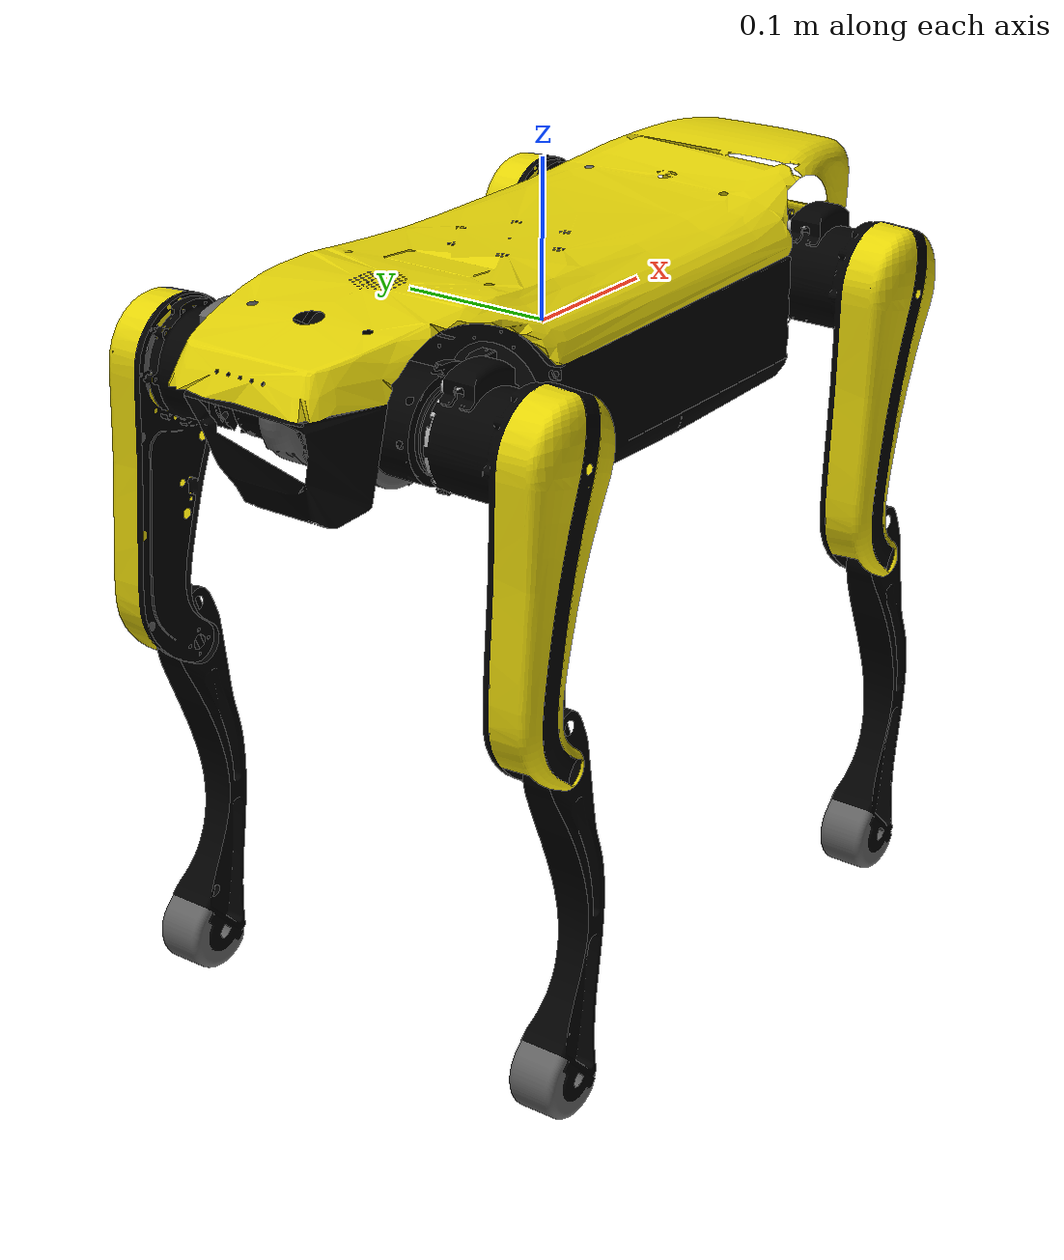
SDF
<sdf version='1.6'>
  <model name='MiniLiteV2'>
    <link name='TORSO'>
      <pose frame=''>0 0 0 0 -0 0</pose>
      <inertial>
        <pose frame=''>0.046396 -0.001759 0.028665 0 -0 0</pose>
        <mass>5.298</mass>
        <inertia>
          <ixx>0.0095569</ixx>
          <ixy>5.9672e-05</ixy>
          <ixz>9.3193e-05</ixz>
          <iyy>0.014357</iyy>
          <iyz>1.9063e-05</iyz>
          <izz>0.01949</izz>
        </inertia>
      </inertial>
      <collision name='TORSO_collision'>
        <pose frame=''>0 0 0 0 -0 0</pose>
        <geometry>
          <box>
            <size>0.234 0.184 0.08</size>
          </box>
        </geometry>
      </collision>
      <visual name='TORSO_visual'>
        <pose frame=''>0 0 0 1.5708 0 -0</pose>
        <geometry>
          <mesh>
            <scale>1 1 1</scale>
            <uri>model://robot_function_pkg/meshes/meshes/TORSO2.dae</uri>
          </mesh>
        </geometry>
      </visual>
    </link>
    <link name='FL_HIP'>
      <pose frame=''>0.175 0.055 0 0 -0 0</pose>
      <inertial>
        <pose frame=''>-0.0047 -0.0091 -0.0018 0 -0 0</pose>
        <mass>0.428</mass>
        <inertia>
          <ixx>0.00014538</ixx>
          <ixy>8.1579e-07</ixy>
          <ixz>-1.264e-05</ixz>
          <iyy>0.00024024</iyy>
          <iyz>1.3443e-06</iyz>
          <izz>0.00013038</izz>
        </inertia>
      </inertial>
      <visual name='FL_HIP_visual'>
        <pose frame=''>0 0 0 0 -0 0</pose>
        <geometry>
          <mesh>
            <scale>1 1 1</scale>
            <uri>model://robot_function_pkg/meshes/meshes/FL_HIP.dae</uri>
          </mesh>
        </geometry>
      </visual>
    </link>
    <joint name='FL_HipX' type='revolute'>
      <child>FL_HIP</child>
      <parent>TORSO</parent>
      <axis>
        <xyz>1 0 0</xyz>
        <limit>
          <lower>-0.523</lower>
          <upper>0.523</upper>
          <effort>13.2</effort>
          <velocity>20</velocity>
        </limit>
        <dynamics>
          <spring_reference>0</spring_reference>
          <spring_stiffness>0</spring_stiffness>
        </dynamics>
        <use_parent_model_frame>1</use_parent_model_frame>
      </axis>
    </joint>
    <link name='FL_THIGH'>
      <pose frame=''>0.175 0.136 0 0 -0 0</pose>
      <inertial>
        <pose frame=''>-0.00523 -0.0216 -0.0273 0 -0 0</pose>
        <mass>0.61</mass>
        <inertia>
          <ixx>0.001</ixx>
          <ixy>-2.5e-06</ixy>
          <ixz>-0.000112</ixz>
          <iyy>0.00116</iyy>
          <iyz>3.75e-07</iyz>
          <izz>0.000268</izz>
        </inertia>
      </inertial>
      <collision name='FL_THIGH_collision'>
        <pose frame=''>0 0 -0.06 0 -0 0</pose>
        <geometry>
          <box>
            <size>0.03 0.03 0.12</size>
          </box>
        </geometry>
      </collision>
      <visual name='FL_THIGH_visual'>
        <pose frame=''>0 0 0 0 -0 0</pose>
        <geometry>
          <mesh>
            <scale>1 1 1</scale>
            <uri>model://robot_function_pkg/meshes/meshes/L_THIGH.dae</uri>
          </mesh>
        </geometry>
      </visual>
    </link>
    <joint name='FL_HipY' type='revolute'>
      <child>FL_THIGH</child>
      <parent>FL_HIP</parent>
      <axis>
        <xyz>0 -1 0</xyz>
        <limit>
          <lower>-3.49</lower>
          <upper>0.349</upper>
          <effort>13.2</effort>
          <velocity>20</velocity>
        </limit>
        <dynamics>
          <spring_reference>0</spring_reference>
          <spring_stiffness>0</spring_stiffness>
        </dynamics>
        <use_parent_model_frame>1</use_parent_model_frame>
      </axis>
    </joint>
    <link name='FL_SHANK'>
      <pose frame=''>0.175 0.136 -0.18 0 -0 0</pose>
      <inertial>
        <pose frame=''>0.00585 -1e-06 -0.12 0 -0 0</pose>
        <mass>0.145</mass>
        <inertia>
          <ixx>0.000668</ixx>
          <ixy>-1.24e-08</ixy>
          <ixz>6.91e-06</ixz>
          <iyy>0.000686</iyy>
          <iyz>5.65e-09</iyz>
          <izz>3.155e-05</izz>
        </inertia>
      </inertial>
      <collision name='FL_SHANK_collision'>
        <pose frame=''>0 0 -0.08 0 -0 0</pose>
        <geometry>
          <box>
            <size>0.02 0.02 0.16</size>
          </box>
        </geometry>
      </collision>
      <collision name='FL_SHANK_fixed_joint_lump__FL_FOOT_collision_1'>
        <pose frame=''>0 0 -0.19 0 -0 0</pose>
        <geometry>
          <sphere>
            <radius>0.012</radius>
          </sphere>
        </geometry>
      </collision>
      <visual name='FL_SHANK_visual'>
        <pose frame=''>0 0 0 0 -0 0</pose>
        <geometry>
          <mesh>
            <scale>1 1 1</scale>
            <uri>model://robot_function_pkg/meshes/meshes/SHANK.dae</uri>
          </mesh>
        </geometry>
      </visual>
    </link>
    <joint name='FL_Knee' type='revolute'>
      <child>FL_SHANK</child>
      <parent>FL_THIGH</parent>
      <axis>
        <xyz>0 -1 0</xyz>
        <limit>
          <lower>0.419</lower>
          <upper>2.53</upper>
          <effort>28</effort>
          <velocity>20</velocity>
        </limit>
        <dynamics>
          <spring_reference>0</spring_reference>
          <spring_stiffness>0</spring_stiffness>
        </dynamics>
        <use_parent_model_frame>1</use_parent_model_frame>
      </axis>
    </joint>
    <link name='FR_HIP'>
      <pose frame=''>0.175 -0.055 0 0 -0 0</pose>
      <inertial>
        <pose frame=''>-0.0047 0.0091 -0.0018 0 -0 0</pose>
        <mass>0.428</mass>
        <inertia>
          <ixx>0.00014538</ixx>
          <ixy>-8.1551e-07</ixy>
          <ixz>-1.2639e-05</ixz>
          <iyy>0.00024024</iyy>
          <iyz>-1.3441e-06</iyz>
          <izz>0.00013038</izz>
        </inertia>
      </inertial>
      <visual name='FR_HIP_visual'>
        <pose frame=''>0 0 0 0 -0 0</pose>
        <geometry>
          <mesh>
            <scale>1 1 1</scale>
            <uri>model://robot_function_pkg/meshes/meshes/FR_HIP.dae</uri>
          </mesh>
        </geometry>
      </visual>
    </link>
    <joint name='FR_HipX' type='revolute'>
      <child>FR_HIP</child>
      <parent>TORSO</parent>
      <axis>
        <xyz>-1 0 0</xyz>
        <limit>
          <lower>-0.523</lower>
          <upper>0.523</upper>
          <effort>13.2</effort>
          <velocity>20</velocity>
        </limit>
        <dynamics>
          <spring_reference>0</spring_reference>
          <spring_stiffness>0</spring_stiffness>
        </dynamics>
        <use_parent_model_frame>1</use_parent_model_frame>
      </axis>
    </joint>
    <link name='FR_THIGH'>
      <pose frame=''>0.175 -0.135 0 0 -0 0</pose>
      <inertial>
        <pose frame=''>-0.00523 0.0216 -0.0273 0 -0 0</pose>
        <mass>0.61</mass>
        <inertia>
          <ixx>0.001</ixx>
          <ixy>2.5e-06</ixy>
          <ixz>-0.000112</ixz>
          <iyy>0.00116</iyy>
          <iyz>-3.75e-07</iyz>
          <izz>0.000268</izz>
        </inertia>
      </inertial>
      <collision name='FR_THIGH_collision'>
        <pose frame=''>0 0 -0.08 0 -0 0</pose>
        <geometry>
          <box>
            <size>0.03 0.03 0.16</size>
          </box>
        </geometry>
      </collision>
      <visual name='FR_THIGH_visual'>
        <pose frame=''>0 0 0 1.5708 -0 0</pose>
        <geometry>
          <mesh>
            <scale>1 1 1</scale>
            <uri>model://robot_function_pkg/meshes/meshes/R_THIGH2.dae</uri>
          </mesh>
        </geometry>
      </visual>
    </link>
    <joint name='FR_HipY' type='revolute'>
      <child>FR_THIGH</child>
      <parent>FR_HIP</parent>
      <axis>
        <xyz>0 -1 0</xyz>
        <limit>
          <lower>-3.49</lower>
          <upper>0.349</upper>
          <effort>13.2</effort>
          <velocity>20</velocity>
        </limit>
        <dynamics>
          <spring_reference>0</spring_reference>
          <spring_stiffness>0</spring_stiffness>
        </dynamics>
        <use_parent_model_frame>1</use_parent_model_frame>
      </axis>
    </joint>
    <link name='FR_SHANK'>
      <pose frame=''>0.175 -0.135 -0.18 0 -0 0</pose>
      <inertial>
        <pose frame=''>0.00585 -1e-06 -0.12 0 -0 0</pose>
        <mass>0.145</mass>
        <inertia>
          <ixx>0.000668</ixx>
          <ixy>-1.24e-08</ixy>
          <ixz>6.91e-06</ixz>
          <iyy>0.000686</iyy>
          <iyz>5.65e-09</iyz>
          <izz>3.155e-05</izz>
        </inertia>
      </inertial>
      <collision name='FR_SHANK_collision'>
        <pose frame=''>0 0 -0.08 0 -0 0</pose>
        <geometry>
          <box>
            <size>0.02 0.02 0.16</size>
          </box>
        </geometry>
      </collision>
      <collision name='FR_SHANK_fixed_joint_lump__FR_FOOT_collision_1'>
        <pose frame=''>0 0 -0.19 0 -0 0</pose>
        <geometry>
          <sphere>
            <radius>0.012</radius>
          </sphere>
        </geometry>
      </collision>
      <visual name='FR_SHANK_visual'>
        <pose frame=''>0 0 0 0 -0 0</pose>
        <geometry>
          <mesh>
            <scale>1 1 1</scale>
            <uri>model://robot_function_pkg/meshes/meshes/SHANK.dae</uri>
          </mesh>
        </geometry>
      </visual>
    </link>
    <joint name='FR_Knee' type='revolute'>
      <child>FR_SHANK</child>
      <parent>FR_THIGH</parent>
      <axis>
        <xyz>0 -1 0</xyz>
        <limit>
          <lower>0.419</lower>
          <upper>2.53</upper>
          <effort>28</effort>
          <velocity>20</velocity>
        </limit>
        <dynamics>
          <spring_reference>0</spring_reference>
          <spring_stiffness>0</spring_stiffness>
        </dynamics>
        <use_parent_model_frame>1</use_parent_model_frame>
      </axis>
    </joint>
    <link name='HL_HIP'>
      <pose frame=''>-0.175 0.055 0 0 -0 0</pose>
      <inertial>
        <pose frame=''>0.0047 -0.0091 -0.0018 0 -0 0</pose>
        <mass>0.428</mass>
        <inertia>
          <ixx>0.00014538</ixx>
          <ixy>-8.1585e-07</ixy>
          <ixz>1.2639e-05</ixz>
          <iyy>0.00024024</iyy>
          <iyz>1.3444e-06</iyz>
          <izz>0.00013038</izz>
        </inertia>
      </inertial>
      <visual name='HL_HIP_visual'>
        <pose frame=''>0 0 0 0 -0 0</pose>
        <geometry>
          <mesh>
            <scale>1 1 1</scale>
            <uri>model://robot_function_pkg/meshes/meshes/HL_HIP.dae</uri>
          </mesh>
        </geometry>
      </visual>
    </link>
    <joint name='HL_HipX' type='revolute'>
      <child>HL_HIP</child>
      <parent>TORSO</parent>
      <axis>
        <xyz>1 0 0</xyz>
        <limit>
          <lower>-0.523</lower>
          <upper>0.523</upper>
          <effort>13.2</effort>
          <velocity>20</velocity>
        </limit>
        <dynamics>
          <spring_reference>0</spring_reference>
          <spring_stiffness>0</spring_stiffness>
        </dynamics>
        <use_parent_model_frame>1</use_parent_model_frame>
      </axis>
    </joint>
    <link name='HL_THIGH'>
      <pose frame=''>-0.175 0.136 0 0 -0 0</pose>
      <inertial>
        <pose frame=''>-0.00523 -0.0216 -0.0273 0 -0 0</pose>
        <mass>0.61</mass>
        <inertia>
          <ixx>0.001</ixx>
          <ixy>-2.5e-06</ixy>
          <ixz>-0.000112</ixz>
          <iyy>0.00116</iyy>
          <iyz>3.75e-07</iyz>
          <izz>0.000268</izz>
        </inertia>
      </inertial>
      <collision name='HL_THIGH_collision'>
        <pose frame=''>0 0 -0.06 0 -0 0</pose>
        <geometry>
          <box>
            <size>0.03 0.03 0.12</size>
          </box>
        </geometry>
      </collision>
      <visual name='HL_THIGH_visual'>
        <pose frame=''>0 0 0 0 -0 0</pose>
        <geometry>
          <mesh>
            <scale>1 1 1</scale>
            <uri>model://robot_function_pkg/meshes/meshes/L_THIGH.dae</uri>
          </mesh>
        </geometry>
      </visual>
    </link>
    <joint name='HL_HipY' type='revolute'>
      <child>HL_THIGH</child>
      <parent>HL_HIP</parent>
      <axis>
        <xyz>0 -1 0</xyz>
        <limit>
          <lower>-3.49</lower>
          <upper>0.349</upper>
          <effort>13.2</effort>
          <velocity>20</velocity>
        </limit>
        <dynamics>
          <spring_reference>0</spring_reference>
          <spring_stiffness>0</spring_stiffness>
        </dynamics>
        <use_parent_model_frame>1</use_parent_model_frame>
      </axis>
    </joint>
    <link name='HL_SHANK'>
      <pose frame=''>-0.175 0.136 -0.18 0 -0 0</pose>
      <inertial>
        <pose frame=''>0.00585 -1e-06 -0.12 0 -0 0</pose>
        <mass>0.145</mass>
        <inertia>
          <ixx>0.000668</ixx>
          <ixy>-1.24e-08</ixy>
          <ixz>6.91e-06</ixz>
          <iyy>0.000686</iyy>
          <iyz>5.65e-09</iyz>
          <izz>3.155e-05</izz>
        </inertia>
      </inertial>
      <collision name='HL_SHANK_collision'>
        <pose frame=''>0 0 -0.08 0 -0 0</pose>
        <geometry>
          <box>
            <size>0.02 0.02 0.16</size>
          </box>
        </geometry>
      </collision>
      <collision name='HL_SHANK_fixed_joint_lump__HL_FOOT_collision_1'>
        <pose frame=''>0 0 -0.19 0 -0 0</pose>
        <geometry>
          <sphere>
            <radius>0.012</radius>
          </sphere>
        </geometry>
      </collision>
      <visual name='HL_SHANK_visual'>
        <pose frame=''>0 0 0 0 -0 0</pose>
        <geometry>
          <mesh>
            <scale>1 1 1</scale>
            <uri>model://robot_function_pkg/meshes/meshes/SHANK.dae</uri>
          </mesh>
        </geometry>
      </visual>
    </link>
    <joint name='HL_Knee' type='revolute'>
      <child>HL_SHANK</child>
      <parent>HL_THIGH</parent>
      <axis>
        <xyz>0 -1 0</xyz>
        <limit>
          <lower>0.419</lower>
          <upper>2.53</upper>
          <effort>28</effort>
          <velocity>20</velocity>
        </limit>
        <dynamics>
          <spring_reference>0</spring_reference>
          <spring_stiffness>0</spring_stiffness>
        </dynamics>
        <use_parent_model_frame>1</use_parent_model_frame>
      </axis>
    </joint>
    <link name='HR_HIP'>
      <pose frame=''>-0.175 -0.055 0 0 -0 0</pose>
      <inertial>
        <pose frame=''>0.0047 0.0091 -0.0018 0 -0 0</pose>
        <mass>0.428</mass>
        <inertia>
          <ixx>0.00014538</ixx>
          <ixy>8.1545e-07</ixy>
          <ixz>1.2639e-05</ixz>
          <iyy>0.00024024</iyy>
          <iyz>-1.344e-06</iyz>
          <izz>0.00013038</izz>
        </inertia>
      </inertial>
      <visual name='HR_HIP_visual'>
        <pose frame=''>0 0 0 0 -0 0</pose>
        <geometry>
          <mesh>
            <scale>1 1 1</scale>
            <uri>model://robot_function_pkg/meshes/meshes/HR_HIP.dae</uri>
          </mesh>
        </geometry>
      </visual>
    </link>
    <joint name='HR_HipX' type='revolute'>
      <child>HR_HIP</child>
      <parent>TORSO</parent>
      <axis>
        <xyz>-1 0 0</xyz>
        <limit>
          <lower>-0.523</lower>
          <upper>0.523</upper>
          <effort>13.2</effort>
          <velocity>20</velocity>
        </limit>
        <dynamics>
          <spring_reference>0</spring_reference>
          <spring_stiffness>0</spring_stiffness>
        </dynamics>
        <use_parent_model_frame>1</use_parent_model_frame>
      </axis>
    </joint>
    <link name='HR_THIGH'>
      <pose frame=''>-0.175 -0.136 0 0 -0 0</pose>
      <inertial>
        <pose frame=''>-0.00523 0.0216 -0.0273 0 -0 0</pose>
        <mass>0.61</mass>
        <inertia>
          <ixx>0.001</ixx>
          <ixy>2.5e-06</ixy>
          <ixz>-0.000112</ixz>
          <iyy>0.00116</iyy>
          <iyz>-3.75e-07</iyz>
          <izz>0.000268</izz>
        </inertia>
      </inertial>
      <collision name='HR_THIGH_collision'>
        <pose frame=''>0 0 -0.06 0 -0 0</pose>
        <geometry>
          <box>
            <size>0.03 0.03 0.12</size>
          </box>
        </geometry>
      </collision>
      <visual name='HR_THIGH_visual'>
        <pose frame=''>0 0 0 1.5708 -0 0</pose>
        <geometry>
          <mesh>
            <scale>1 1 1</scale>
            <uri>model://robot_function_pkg/meshes/meshes/R_THIGH2.dae</uri>
          </mesh>
        </geometry>
      </visual>
    </link>
    <joint name='HR_HipY' type='revolute'>
      <child>HR_THIGH</child>
      <parent>HR_HIP</parent>
      <axis>
        <xyz>0 -1 0</xyz>
        <limit>
          <lower>-3.49</lower>
          <upper>0.349</upper>
          <effort>13.2</effort>
          <velocity>20</velocity>
        </limit>
        <dynamics>
          <spring_reference>0</spring_reference>
          <spring_stiffness>0</spring_stiffness>
        </dynamics>
        <use_parent_model_frame>1</use_parent_model_frame>
      </axis>
    </joint>
    <link name='HR_SHANK'>
      <pose frame=''>-0.175 -0.136 -0.18 0 -0 0</pose>
      <inertial>
        <pose frame=''>0.00585 -1e-06 -0.12 0 -0 0</pose>
        <mass>0.145</mass>
        <inertia>
          <ixx>0.000668</ixx>
          <ixy>-1.24e-08</ixy>
          <ixz>6.91e-06</ixz>
          <iyy>0.000686</iyy>
          <iyz>5.65e-09</iyz>
          <izz>3.155e-05</izz>
        </inertia>
      </inertial>
      <collision name='HR_SHANK_collision'>
        <pose frame=''>0 0 -0.08 0 -0 0</pose>
        <geometry>
          <box>
            <size>0.02 0.02 0.16</size>
          </box>
        </geometry>
      </collision>
      <collision name='HR_SHANK_fixed_joint_lump__HR_FOOT_collision_1'>
        <pose frame=''>0 0 -0.19 0 -0 0</pose>
        <geometry>
          <sphere>
            <radius>0.012</radius>
          </sphere>
        </geometry>
      </collision>
      <visual name='HR_SHANK_visual'>
        <pose frame=''>0 0 0 0 -0 0</pose>
        <geometry>
          <mesh>
            <scale>1 1 1</scale>
            <uri>model://robot_function_pkg/meshes/meshes/SHANK.dae</uri>
          </mesh>
        </geometry>
      </visual>
    </link>
    <joint name='HR_Knee' type='revolute'>
      <child>HR_SHANK</child>
      <parent>HR_THIGH</parent>
      <axis>
        <xyz>0 -1 0</xyz>
        <limit>
          <lower>0.419</lower>
          <upper>2.53</upper>
          <effort>28</effort>
          <velocity>20</velocity>
        </limit>
        <dynamics>
          <spring_reference>0</spring_reference>
          <spring_stiffness>0</spring_stiffness>
        </dynamics>
        <use_parent_model_frame>1</use_parent_model_frame>
      </axis>
    </joint>
  </model>
</sdf>
